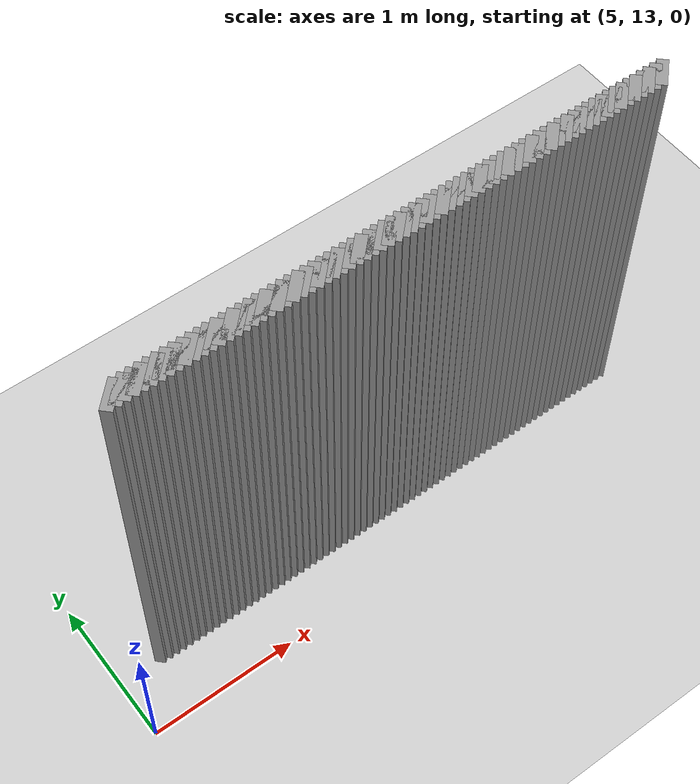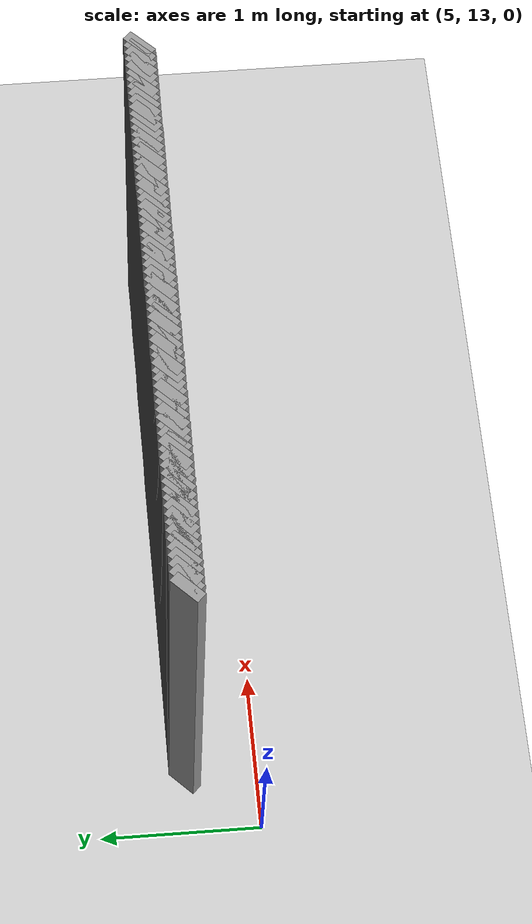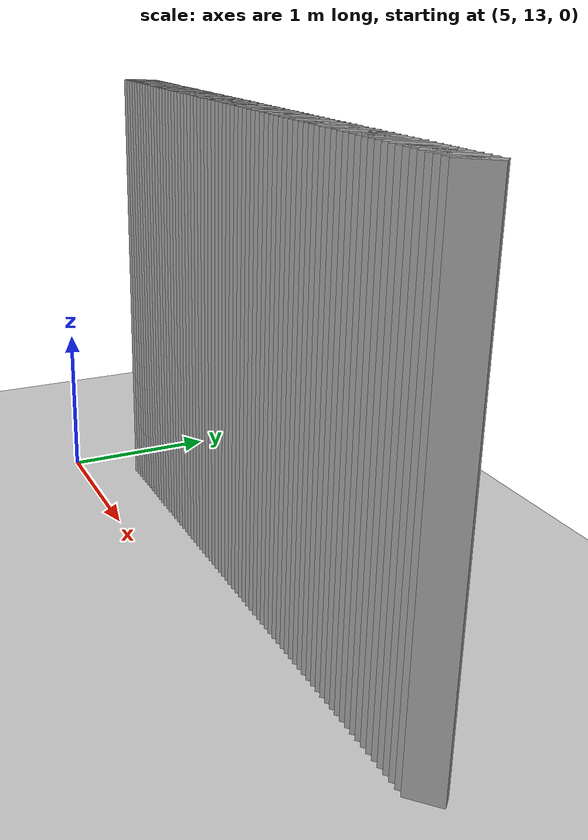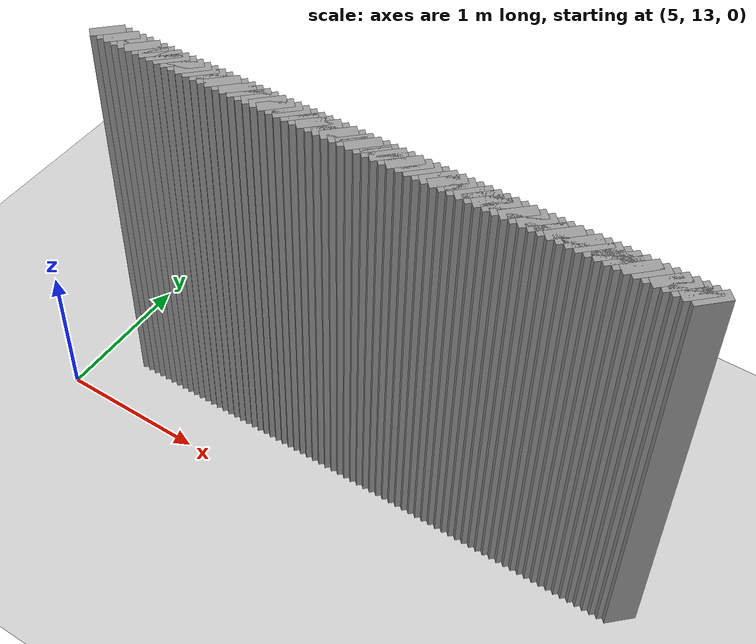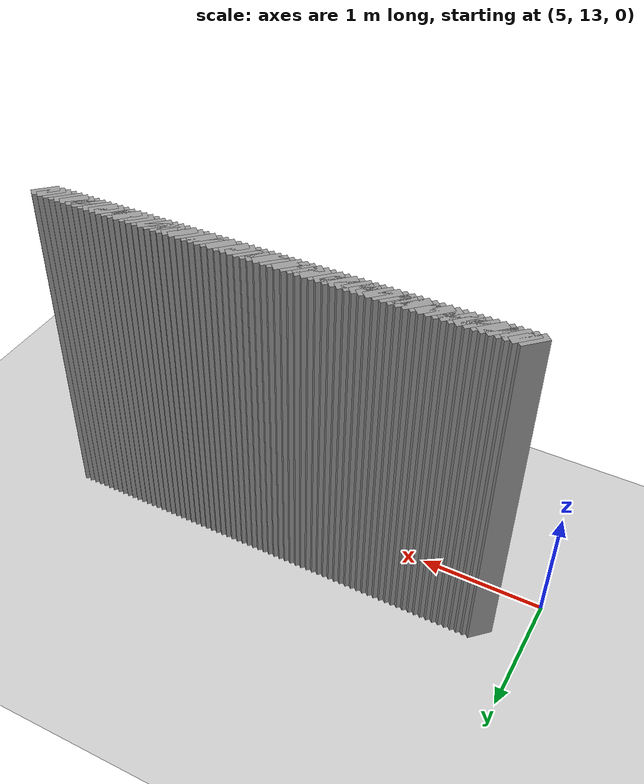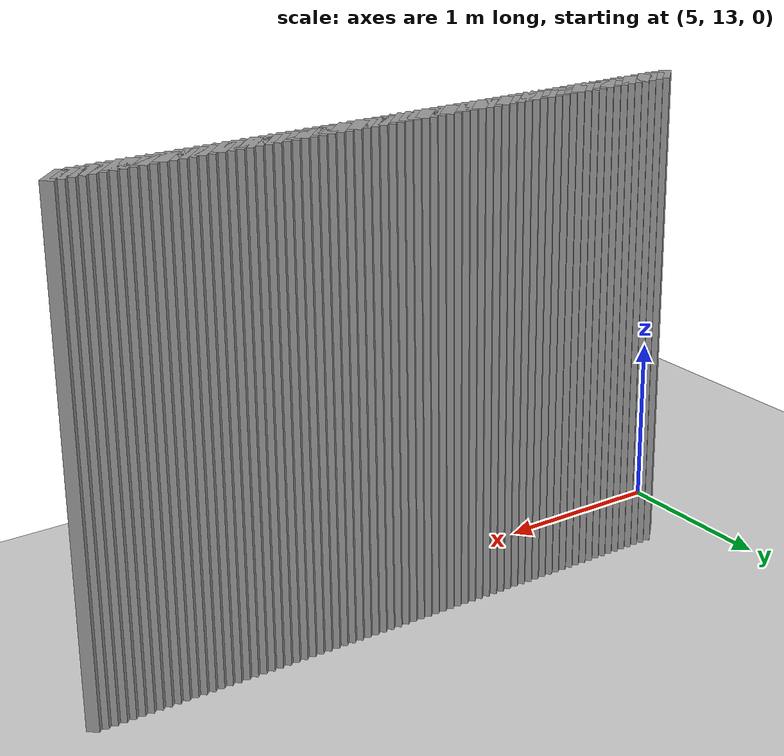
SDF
<sdf version="1.5">
 <world name="default">
  <include><uri>model://ground_plane</uri></include>
  <include><uri>model://sun</uri></include>
  <model name="grey_wall_1110">
   <static>1</static>
   <link name="link">
    <pose>5.3500000000000005 13.450000000000001  1.4 0 0 -0.7853981633974483</pose>
    <collision name="collision">
     <geometry><box><size>0.07071067811865576 .2  2.8</size></box></geometry>
    </collision>
    <visual name="visual">
     <cast_shadows>0</cast_shadows>
     <geometry><box><size>0.07071067811865576 .2  2.8</size></box></geometry>
     <material>
      <script>
       <uri>model://grey_wall/materials/scripts</uri>
       <uri>model://grey_wall/materials/textures</uri>
       <name>vrc/grey_wall</name>
      </script>
     </material>
    </visual>
   </link>
  </model>
  <model name="grey_wall_1111">
   <static>1</static>
   <link name="link">
    <pose>5.4 13.450000000000001  1.4 0 0 -0.7853981633974483</pose>
    <collision name="collision">
     <geometry><box><size>0.07071067811865576 .2  2.8</size></box></geometry>
    </collision>
    <visual name="visual">
     <cast_shadows>0</cast_shadows>
     <geometry><box><size>0.07071067811865576 .2  2.8</size></box></geometry>
     <material>
      <script>
       <uri>model://grey_wall/materials/scripts</uri>
       <uri>model://grey_wall/materials/textures</uri>
       <name>vrc/grey_wall</name>
      </script>
     </material>
    </visual>
   </link>
  </model>
  <model name="grey_wall_1112">
   <static>1</static>
   <link name="link">
    <pose>5.45 13.450000000000001  1.4 0 0 -0.7853981633974483</pose>
    <collision name="collision">
     <geometry><box><size>0.07071067811865576 .2  2.8</size></box></geometry>
    </collision>
    <visual name="visual">
     <cast_shadows>0</cast_shadows>
     <geometry><box><size>0.07071067811865576 .2  2.8</size></box></geometry>
     <material>
      <script>
       <uri>model://grey_wall/materials/scripts</uri>
       <uri>model://grey_wall/materials/textures</uri>
       <name>vrc/grey_wall</name>
      </script>
     </material>
    </visual>
   </link>
  </model>
  <model name="grey_wall_1113">
   <static>1</static>
   <link name="link">
    <pose>5.5 13.450000000000001  1.4 0 0 -0.7853981633974483</pose>
    <collision name="collision">
     <geometry><box><size>0.07071067811865576 .2  2.8</size></box></geometry>
    </collision>
    <visual name="visual">
     <cast_shadows>0</cast_shadows>
     <geometry><box><size>0.07071067811865576 .2  2.8</size></box></geometry>
     <material>
      <script>
       <uri>model://grey_wall/materials/scripts</uri>
       <uri>model://grey_wall/materials/textures</uri>
       <name>vrc/grey_wall</name>
      </script>
     </material>
    </visual>
   </link>
  </model>
  <model name="grey_wall_1114">
   <static>1</static>
   <link name="link">
    <pose>5.550000000000001 13.450000000000001  1.4 0 0 -0.7853981633974483</pose>
    <collision name="collision">
     <geometry><box><size>0.07071067811865576 .2  2.8</size></box></geometry>
    </collision>
    <visual name="visual">
     <cast_shadows>0</cast_shadows>
     <geometry><box><size>0.07071067811865576 .2  2.8</size></box></geometry>
     <material>
      <script>
       <uri>model://grey_wall/materials/scripts</uri>
       <uri>model://grey_wall/materials/textures</uri>
       <name>vrc/grey_wall</name>
      </script>
     </material>
    </visual>
   </link>
  </model>
  <model name="grey_wall_1115">
   <static>1</static>
   <link name="link">
    <pose>5.6000000000000005 13.450000000000001  1.4 0 0 -0.7853981633974483</pose>
    <collision name="collision">
     <geometry><box><size>0.07071067811865576 .2  2.8</size></box></geometry>
    </collision>
    <visual name="visual">
     <cast_shadows>0</cast_shadows>
     <geometry><box><size>0.07071067811865576 .2  2.8</size></box></geometry>
     <material>
      <script>
       <uri>model://grey_wall/materials/scripts</uri>
       <uri>model://grey_wall/materials/textures</uri>
       <name>vrc/grey_wall</name>
      </script>
     </material>
    </visual>
   </link>
  </model>
  <model name="grey_wall_1116">
   <static>1</static>
   <link name="link">
    <pose>5.65 13.450000000000001  1.4 0 0 -0.7853981633974483</pose>
    <collision name="collision">
     <geometry><box><size>0.07071067811865576 .2  2.8</size></box></geometry>
    </collision>
    <visual name="visual">
     <cast_shadows>0</cast_shadows>
     <geometry><box><size>0.07071067811865576 .2  2.8</size></box></geometry>
     <material>
      <script>
       <uri>model://grey_wall/materials/scripts</uri>
       <uri>model://grey_wall/materials/textures</uri>
       <name>vrc/grey_wall</name>
      </script>
     </material>
    </visual>
   </link>
  </model>
  <model name="grey_wall_1117">
   <static>1</static>
   <link name="link">
    <pose>5.7 13.450000000000001  1.4 0 0 -0.7853981633974483</pose>
    <collision name="collision">
     <geometry><box><size>0.07071067811865576 .2  2.8</size></box></geometry>
    </collision>
    <visual name="visual">
     <cast_shadows>0</cast_shadows>
     <geometry><box><size>0.07071067811865576 .2  2.8</size></box></geometry>
     <material>
      <script>
       <uri>model://grey_wall/materials/scripts</uri>
       <uri>model://grey_wall/materials/textures</uri>
       <name>vrc/grey_wall</name>
      </script>
     </material>
    </visual>
   </link>
  </model>
  <model name="grey_wall_1118">
   <static>1</static>
   <link name="link">
    <pose>5.75 13.450000000000001  1.4 0 0 -0.7853981633974483</pose>
    <collision name="collision">
     <geometry><box><size>0.07071067811865576 .2  2.8</size></box></geometry>
    </collision>
    <visual name="visual">
     <cast_shadows>0</cast_shadows>
     <geometry><box><size>0.07071067811865576 .2  2.8</size></box></geometry>
     <material>
      <script>
       <uri>model://grey_wall/materials/scripts</uri>
       <uri>model://grey_wall/materials/textures</uri>
       <name>vrc/grey_wall</name>
      </script>
     </material>
    </visual>
   </link>
  </model>
  <model name="grey_wall_1119">
   <static>1</static>
   <link name="link">
    <pose>5.800000000000001 13.450000000000001  1.4 0 0 -0.7853981633974483</pose>
    <collision name="collision">
     <geometry><box><size>0.07071067811865576 .2  2.8</size></box></geometry>
    </collision>
    <visual name="visual">
     <cast_shadows>0</cast_shadows>
     <geometry><box><size>0.07071067811865576 .2  2.8</size></box></geometry>
     <material>
      <script>
       <uri>model://grey_wall/materials/scripts</uri>
       <uri>model://grey_wall/materials/textures</uri>
       <name>vrc/grey_wall</name>
      </script>
     </material>
    </visual>
   </link>
  </model>
  <model name="grey_wall_1120">
   <static>1</static>
   <link name="link">
    <pose>5.8500000000000005 13.450000000000001  1.4 0 0 -0.7853981633974483</pose>
    <collision name="collision">
     <geometry><box><size>0.07071067811865576 .2  2.8</size></box></geometry>
    </collision>
    <visual name="visual">
     <cast_shadows>0</cast_shadows>
     <geometry><box><size>0.07071067811865576 .2  2.8</size></box></geometry>
     <material>
      <script>
       <uri>model://grey_wall/materials/scripts</uri>
       <uri>model://grey_wall/materials/textures</uri>
       <name>vrc/grey_wall</name>
      </script>
     </material>
    </visual>
   </link>
  </model>
  <model name="grey_wall_1121">
   <static>1</static>
   <link name="link">
    <pose>5.9 13.450000000000001  1.4 0 0 -0.7853981633974483</pose>
    <collision name="collision">
     <geometry><box><size>0.07071067811865576 .2  2.8</size></box></geometry>
    </collision>
    <visual name="visual">
     <cast_shadows>0</cast_shadows>
     <geometry><box><size>0.07071067811865576 .2  2.8</size></box></geometry>
     <material>
      <script>
       <uri>model://grey_wall/materials/scripts</uri>
       <uri>model://grey_wall/materials/textures</uri>
       <name>vrc/grey_wall</name>
      </script>
     </material>
    </visual>
   </link>
  </model>
  <model name="grey_wall_1122">
   <static>1</static>
   <link name="link">
    <pose>5.95 13.450000000000001  1.4 0 0 -0.7853981633974483</pose>
    <collision name="collision">
     <geometry><box><size>0.07071067811865576 .2  2.8</size></box></geometry>
    </collision>
    <visual name="visual">
     <cast_shadows>0</cast_shadows>
     <geometry><box><size>0.07071067811865576 .2  2.8</size></box></geometry>
     <material>
      <script>
       <uri>model://grey_wall/materials/scripts</uri>
       <uri>model://grey_wall/materials/textures</uri>
       <name>vrc/grey_wall</name>
      </script>
     </material>
    </visual>
   </link>
  </model>
  <model name="grey_wall_1123">
   <static>1</static>
   <link name="link">
    <pose>6.0 13.450000000000001  1.4 0 0 -0.7853981633974483</pose>
    <collision name="collision">
     <geometry><box><size>0.07071067811865576 .2  2.8</size></box></geometry>
    </collision>
    <visual name="visual">
     <cast_shadows>0</cast_shadows>
     <geometry><box><size>0.07071067811865576 .2  2.8</size></box></geometry>
     <material>
      <script>
       <uri>model://grey_wall/materials/scripts</uri>
       <uri>model://grey_wall/materials/textures</uri>
       <name>vrc/grey_wall</name>
      </script>
     </material>
    </visual>
   </link>
  </model>
  <model name="grey_wall_1124">
   <static>1</static>
   <link name="link">
    <pose>6.050000000000001 13.450000000000001  1.4 0 0 -0.7853981633974483</pose>
    <collision name="collision">
     <geometry><box><size>0.07071067811865576 .2  2.8</size></box></geometry>
    </collision>
    <visual name="visual">
     <cast_shadows>0</cast_shadows>
     <geometry><box><size>0.07071067811865576 .2  2.8</size></box></geometry>
     <material>
      <script>
       <uri>model://grey_wall/materials/scripts</uri>
       <uri>model://grey_wall/materials/textures</uri>
       <name>vrc/grey_wall</name>
      </script>
     </material>
    </visual>
   </link>
  </model>
  <model name="grey_wall_1125">
   <static>1</static>
   <link name="link">
    <pose>6.1000000000000005 13.450000000000001  1.4 0 0 -0.7853981633974483</pose>
    <collision name="collision">
     <geometry><box><size>0.07071067811865576 .2  2.8</size></box></geometry>
    </collision>
    <visual name="visual">
     <cast_shadows>0</cast_shadows>
     <geometry><box><size>0.07071067811865576 .2  2.8</size></box></geometry>
     <material>
      <script>
       <uri>model://grey_wall/materials/scripts</uri>
       <uri>model://grey_wall/materials/textures</uri>
       <name>vrc/grey_wall</name>
      </script>
     </material>
    </visual>
   </link>
  </model>
  <model name="grey_wall_1126">
   <static>1</static>
   <link name="link">
    <pose>6.15 13.450000000000001  1.4 0 0 -0.7853981633974483</pose>
    <collision name="collision">
     <geometry><box><size>0.07071067811865576 .2  2.8</size></box></geometry>
    </collision>
    <visual name="visual">
     <cast_shadows>0</cast_shadows>
     <geometry><box><size>0.07071067811865576 .2  2.8</size></box></geometry>
     <material>
      <script>
       <uri>model://grey_wall/materials/scripts</uri>
       <uri>model://grey_wall/materials/textures</uri>
       <name>vrc/grey_wall</name>
      </script>
     </material>
    </visual>
   </link>
  </model>
  <model name="grey_wall_1127">
   <static>1</static>
   <link name="link">
    <pose>6.2 13.450000000000001  1.4 0 0 -0.7853981633974483</pose>
    <collision name="collision">
     <geometry><box><size>0.07071067811865576 .2  2.8</size></box></geometry>
    </collision>
    <visual name="visual">
     <cast_shadows>0</cast_shadows>
     <geometry><box><size>0.07071067811865576 .2  2.8</size></box></geometry>
     <material>
      <script>
       <uri>model://grey_wall/materials/scripts</uri>
       <uri>model://grey_wall/materials/textures</uri>
       <name>vrc/grey_wall</name>
      </script>
     </material>
    </visual>
   </link>
  </model>
  <model name="grey_wall_1128">
   <static>1</static>
   <link name="link">
    <pose>6.25 13.450000000000001  1.4 0 0 -0.7853981633974483</pose>
    <collision name="collision">
     <geometry><box><size>0.07071067811865576 .2  2.8</size></box></geometry>
    </collision>
    <visual name="visual">
     <cast_shadows>0</cast_shadows>
     <geometry><box><size>0.07071067811865576 .2  2.8</size></box></geometry>
     <material>
      <script>
       <uri>model://grey_wall/materials/scripts</uri>
       <uri>model://grey_wall/materials/textures</uri>
       <name>vrc/grey_wall</name>
      </script>
     </material>
    </visual>
   </link>
  </model>
  <model name="grey_wall_1129">
   <static>1</static>
   <link name="link">
    <pose>6.300000000000001 13.450000000000001  1.4 0 0 -0.7853981633974483</pose>
    <collision name="collision">
     <geometry><box><size>0.07071067811865576 .2  2.8</size></box></geometry>
    </collision>
    <visual name="visual">
     <cast_shadows>0</cast_shadows>
     <geometry><box><size>0.07071067811865576 .2  2.8</size></box></geometry>
     <material>
      <script>
       <uri>model://grey_wall/materials/scripts</uri>
       <uri>model://grey_wall/materials/textures</uri>
       <name>vrc/grey_wall</name>
      </script>
     </material>
    </visual>
   </link>
  </model>
  <model name="grey_wall_1130">
   <static>1</static>
   <link name="link">
    <pose>6.3500000000000005 13.450000000000001  1.4 0 0 -0.7853981633974483</pose>
    <collision name="collision">
     <geometry><box><size>0.07071067811865576 .2  2.8</size></box></geometry>
    </collision>
    <visual name="visual">
     <cast_shadows>0</cast_shadows>
     <geometry><box><size>0.07071067811865576 .2  2.8</size></box></geometry>
     <material>
      <script>
       <uri>model://grey_wall/materials/scripts</uri>
       <uri>model://grey_wall/materials/textures</uri>
       <name>vrc/grey_wall</name>
      </script>
     </material>
    </visual>
   </link>
  </model>
  <model name="grey_wall_1131">
   <static>1</static>
   <link name="link">
    <pose>6.4 13.450000000000001  1.4 0 0 -0.7853981633974483</pose>
    <collision name="collision">
     <geometry><box><size>0.07071067811865576 .2  2.8</size></box></geometry>
    </collision>
    <visual name="visual">
     <cast_shadows>0</cast_shadows>
     <geometry><box><size>0.07071067811865576 .2  2.8</size></box></geometry>
     <material>
      <script>
       <uri>model://grey_wall/materials/scripts</uri>
       <uri>model://grey_wall/materials/textures</uri>
       <name>vrc/grey_wall</name>
      </script>
     </material>
    </visual>
   </link>
  </model>
  <model name="grey_wall_1132">
   <static>1</static>
   <link name="link">
    <pose>6.45 13.450000000000001  1.4 0 0 -0.7853981633974483</pose>
    <collision name="collision">
     <geometry><box><size>0.07071067811865576 .2  2.8</size></box></geometry>
    </collision>
    <visual name="visual">
     <cast_shadows>0</cast_shadows>
     <geometry><box><size>0.07071067811865576 .2  2.8</size></box></geometry>
     <material>
      <script>
       <uri>model://grey_wall/materials/scripts</uri>
       <uri>model://grey_wall/materials/textures</uri>
       <name>vrc/grey_wall</name>
      </script>
     </material>
    </visual>
   </link>
  </model>
  <model name="grey_wall_1133">
   <static>1</static>
   <link name="link">
    <pose>6.5 13.450000000000001  1.4 0 0 -0.7853981633974483</pose>
    <collision name="collision">
     <geometry><box><size>0.07071067811865576 .2  2.8</size></box></geometry>
    </collision>
    <visual name="visual">
     <cast_shadows>0</cast_shadows>
     <geometry><box><size>0.07071067811865576 .2  2.8</size></box></geometry>
     <material>
      <script>
       <uri>model://grey_wall/materials/scripts</uri>
       <uri>model://grey_wall/materials/textures</uri>
       <name>vrc/grey_wall</name>
      </script>
     </material>
    </visual>
   </link>
  </model>
  <model name="grey_wall_1134">
   <static>1</static>
   <link name="link">
    <pose>6.550000000000001 13.450000000000001  1.4 0 0 -0.7853981633974483</pose>
    <collision name="collision">
     <geometry><box><size>0.07071067811865576 .2  2.8</size></box></geometry>
    </collision>
    <visual name="visual">
     <cast_shadows>0</cast_shadows>
     <geometry><box><size>0.07071067811865576 .2  2.8</size></box></geometry>
     <material>
      <script>
       <uri>model://grey_wall/materials/scripts</uri>
       <uri>model://grey_wall/materials/textures</uri>
       <name>vrc/grey_wall</name>
      </script>
     </material>
    </visual>
   </link>
  </model>
  <model name="grey_wall_1135">
   <static>1</static>
   <link name="link">
    <pose>6.6000000000000005 13.450000000000001  1.4 0 0 -0.7853981633974483</pose>
    <collision name="collision">
     <geometry><box><size>0.07071067811865576 .2  2.8</size></box></geometry>
    </collision>
    <visual name="visual">
     <cast_shadows>0</cast_shadows>
     <geometry><box><size>0.07071067811865576 .2  2.8</size></box></geometry>
     <material>
      <script>
       <uri>model://grey_wall/materials/scripts</uri>
       <uri>model://grey_wall/materials/textures</uri>
       <name>vrc/grey_wall</name>
      </script>
     </material>
    </visual>
   </link>
  </model>
  <model name="grey_wall_1136">
   <static>1</static>
   <link name="link">
    <pose>6.65 13.450000000000001  1.4 0 0 -0.7853981633974483</pose>
    <collision name="collision">
     <geometry><box><size>0.07071067811865576 .2  2.8</size></box></geometry>
    </collision>
    <visual name="visual">
     <cast_shadows>0</cast_shadows>
     <geometry><box><size>0.07071067811865576 .2  2.8</size></box></geometry>
     <material>
      <script>
       <uri>model://grey_wall/materials/scripts</uri>
       <uri>model://grey_wall/materials/textures</uri>
       <name>vrc/grey_wall</name>
      </script>
     </material>
    </visual>
   </link>
  </model>
  <model name="grey_wall_1137">
   <static>1</static>
   <link name="link">
    <pose>6.7 13.450000000000001  1.4 0 0 -0.7853981633974483</pose>
    <collision name="collision">
     <geometry><box><size>0.07071067811865576 .2  2.8</size></box></geometry>
    </collision>
    <visual name="visual">
     <cast_shadows>0</cast_shadows>
     <geometry><box><size>0.07071067811865576 .2  2.8</size></box></geometry>
     <material>
      <script>
       <uri>model://grey_wall/materials/scripts</uri>
       <uri>model://grey_wall/materials/textures</uri>
       <name>vrc/grey_wall</name>
      </script>
     </material>
    </visual>
   </link>
  </model>
  <model name="grey_wall_1138">
   <static>1</static>
   <link name="link">
    <pose>6.75 13.450000000000001  1.4 0 0 -0.7853981633974483</pose>
    <collision name="collision">
     <geometry><box><size>0.07071067811865576 .2  2.8</size></box></geometry>
    </collision>
    <visual name="visual">
     <cast_shadows>0</cast_shadows>
     <geometry><box><size>0.07071067811865576 .2  2.8</size></box></geometry>
     <material>
      <script>
       <uri>model://grey_wall/materials/scripts</uri>
       <uri>model://grey_wall/materials/textures</uri>
       <name>vrc/grey_wall</name>
      </script>
     </material>
    </visual>
   </link>
  </model>
  <model name="grey_wall_1139">
   <static>1</static>
   <link name="link">
    <pose>6.800000000000001 13.450000000000001  1.4 0 0 -0.7853981633974483</pose>
    <collision name="collision">
     <geometry><box><size>0.07071067811865576 .2  2.8</size></box></geometry>
    </collision>
    <visual name="visual">
     <cast_shadows>0</cast_shadows>
     <geometry><box><size>0.07071067811865576 .2  2.8</size></box></geometry>
     <material>
      <script>
       <uri>model://grey_wall/materials/scripts</uri>
       <uri>model://grey_wall/materials/textures</uri>
       <name>vrc/grey_wall</name>
      </script>
     </material>
    </visual>
   </link>
  </model>
  <model name="grey_wall_1140">
   <static>1</static>
   <link name="link">
    <pose>6.8500000000000005 13.450000000000001  1.4 0 0 -0.7853981633974483</pose>
    <collision name="collision">
     <geometry><box><size>0.07071067811865576 .2  2.8</size></box></geometry>
    </collision>
    <visual name="visual">
     <cast_shadows>0</cast_shadows>
     <geometry><box><size>0.07071067811865576 .2  2.8</size></box></geometry>
     <material>
      <script>
       <uri>model://grey_wall/materials/scripts</uri>
       <uri>model://grey_wall/materials/textures</uri>
       <name>vrc/grey_wall</name>
      </script>
     </material>
    </visual>
   </link>
  </model>
  <model name="grey_wall_1141">
   <static>1</static>
   <link name="link">
    <pose>6.9 13.450000000000001  1.4 0 0 -0.7853981633974483</pose>
    <collision name="collision">
     <geometry><box><size>0.07071067811865576 .2  2.8</size></box></geometry>
    </collision>
    <visual name="visual">
     <cast_shadows>0</cast_shadows>
     <geometry><box><size>0.07071067811865576 .2  2.8</size></box></geometry>
     <material>
      <script>
       <uri>model://grey_wall/materials/scripts</uri>
       <uri>model://grey_wall/materials/textures</uri>
       <name>vrc/grey_wall</name>
      </script>
     </material>
    </visual>
   </link>
  </model>
  <model name="grey_wall_1142">
   <static>1</static>
   <link name="link">
    <pose>6.95 13.450000000000001  1.4 0 0 -0.7853981633974483</pose>
    <collision name="collision">
     <geometry><box><size>0.07071067811865576 .2  2.8</size></box></geometry>
    </collision>
    <visual name="visual">
     <cast_shadows>0</cast_shadows>
     <geometry><box><size>0.07071067811865576 .2  2.8</size></box></geometry>
     <material>
      <script>
       <uri>model://grey_wall/materials/scripts</uri>
       <uri>model://grey_wall/materials/textures</uri>
       <name>vrc/grey_wall</name>
      </script>
     </material>
    </visual>
   </link>
  </model>
  <model name="grey_wall_1143">
   <static>1</static>
   <link name="link">
    <pose>7.0 13.450000000000001  1.4 0 0 -0.7853981633974483</pose>
    <collision name="collision">
     <geometry><box><size>0.07071067811865576 .2  2.8</size></box></geometry>
    </collision>
    <visual name="visual">
     <cast_shadows>0</cast_shadows>
     <geometry><box><size>0.07071067811865576 .2  2.8</size></box></geometry>
     <material>
      <script>
       <uri>model://grey_wall/materials/scripts</uri>
       <uri>model://grey_wall/materials/textures</uri>
       <name>vrc/grey_wall</name>
      </script>
     </material>
    </visual>
   </link>
  </model>
  <model name="grey_wall_1144">
   <static>1</static>
   <link name="link">
    <pose>7.050000000000001 13.450000000000001  1.4 0 0 -0.7853981633974483</pose>
    <collision name="collision">
     <geometry><box><size>0.07071067811865576 .2  2.8</size></box></geometry>
    </collision>
    <visual name="visual">
     <cast_shadows>0</cast_shadows>
     <geometry><box><size>0.07071067811865576 .2  2.8</size></box></geometry>
     <material>
      <script>
       <uri>model://grey_wall/materials/scripts</uri>
       <uri>model://grey_wall/materials/textures</uri>
       <name>vrc/grey_wall</name>
      </script>
     </material>
    </visual>
   </link>
  </model>
  <model name="grey_wall_1145">
   <static>1</static>
   <link name="link">
    <pose>7.1000000000000005 13.450000000000001  1.4 0 0 -0.7853981633974483</pose>
    <collision name="collision">
     <geometry><box><size>0.07071067811865576 .2  2.8</size></box></geometry>
    </collision>
    <visual name="visual">
     <cast_shadows>0</cast_shadows>
     <geometry><box><size>0.07071067811865576 .2  2.8</size></box></geometry>
     <material>
      <script>
       <uri>model://grey_wall/materials/scripts</uri>
       <uri>model://grey_wall/materials/textures</uri>
       <name>vrc/grey_wall</name>
      </script>
     </material>
    </visual>
   </link>
  </model>
  <model name="grey_wall_1146">
   <static>1</static>
   <link name="link">
    <pose>7.15 13.450000000000001  1.4 0 0 -0.7853981633974483</pose>
    <collision name="collision">
     <geometry><box><size>0.07071067811865576 .2  2.8</size></box></geometry>
    </collision>
    <visual name="visual">
     <cast_shadows>0</cast_shadows>
     <geometry><box><size>0.07071067811865576 .2  2.8</size></box></geometry>
     <material>
      <script>
       <uri>model://grey_wall/materials/scripts</uri>
       <uri>model://grey_wall/materials/textures</uri>
       <name>vrc/grey_wall</name>
      </script>
     </material>
    </visual>
   </link>
  </model>
  <model name="grey_wall_1147">
   <static>1</static>
   <link name="link">
    <pose>7.2 13.450000000000001  1.4 0 0 -0.7853981633974483</pose>
    <collision name="collision">
     <geometry><box><size>0.07071067811865576 .2  2.8</size></box></geometry>
    </collision>
    <visual name="visual">
     <cast_shadows>0</cast_shadows>
     <geometry><box><size>0.07071067811865576 .2  2.8</size></box></geometry>
     <material>
      <script>
       <uri>model://grey_wall/materials/scripts</uri>
       <uri>model://grey_wall/materials/textures</uri>
       <name>vrc/grey_wall</name>
      </script>
     </material>
    </visual>
   </link>
  </model>
  <model name="grey_wall_1148">
   <static>1</static>
   <link name="link">
    <pose>7.25 13.450000000000001  1.4 0 0 -0.7853981633974483</pose>
    <collision name="collision">
     <geometry><box><size>0.07071067811865576 .2  2.8</size></box></geometry>
    </collision>
    <visual name="visual">
     <cast_shadows>0</cast_shadows>
     <geometry><box><size>0.07071067811865576 .2  2.8</size></box></geometry>
     <material>
      <script>
       <uri>model://grey_wall/materials/scripts</uri>
       <uri>model://grey_wall/materials/textures</uri>
       <name>vrc/grey_wall</name>
      </script>
     </material>
    </visual>
   </link>
  </model>
  <model name="grey_wall_1149">
   <static>1</static>
   <link name="link">
    <pose>7.300000000000001 13.450000000000001  1.4 0 0 -0.7853981633974483</pose>
    <collision name="collision">
     <geometry><box><size>0.07071067811865576 .2  2.8</size></box></geometry>
    </collision>
    <visual name="visual">
     <cast_shadows>0</cast_shadows>
     <geometry><box><size>0.07071067811865576 .2  2.8</size></box></geometry>
     <material>
      <script>
       <uri>model://grey_wall/materials/scripts</uri>
       <uri>model://grey_wall/materials/textures</uri>
       <name>vrc/grey_wall</name>
      </script>
     </material>
    </visual>
   </link>
  </model>
  <model name="grey_wall_1150">
   <static>1</static>
   <link name="link">
    <pose>7.3500000000000005 13.450000000000001  1.4 0 0 -0.7853981633974483</pose>
    <collision name="collision">
     <geometry><box><size>0.07071067811865576 .2  2.8</size></box></geometry>
    </collision>
    <visual name="visual">
     <cast_shadows>0</cast_shadows>
     <geometry><box><size>0.07071067811865576 .2  2.8</size></box></geometry>
     <material>
      <script>
       <uri>model://grey_wall/materials/scripts</uri>
       <uri>model://grey_wall/materials/textures</uri>
       <name>vrc/grey_wall</name>
      </script>
     </material>
    </visual>
   </link>
  </model>
  <model name="grey_wall_1151">
   <static>1</static>
   <link name="link">
    <pose>7.4 13.450000000000001  1.4 0 0 -0.7853981633974483</pose>
    <collision name="collision">
     <geometry><box><size>0.07071067811865576 .2  2.8</size></box></geometry>
    </collision>
    <visual name="visual">
     <cast_shadows>0</cast_shadows>
     <geometry><box><size>0.07071067811865576 .2  2.8</size></box></geometry>
     <material>
      <script>
       <uri>model://grey_wall/materials/scripts</uri>
       <uri>model://grey_wall/materials/textures</uri>
       <name>vrc/grey_wall</name>
      </script>
     </material>
    </visual>
   </link>
  </model>
  <model name="grey_wall_1152">
   <static>1</static>
   <link name="link">
    <pose>7.45 13.450000000000001  1.4 0 0 -0.7853981633974483</pose>
    <collision name="collision">
     <geometry><box><size>0.07071067811865576 .2  2.8</size></box></geometry>
    </collision>
    <visual name="visual">
     <cast_shadows>0</cast_shadows>
     <geometry><box><size>0.07071067811865576 .2  2.8</size></box></geometry>
     <material>
      <script>
       <uri>model://grey_wall/materials/scripts</uri>
       <uri>model://grey_wall/materials/textures</uri>
       <name>vrc/grey_wall</name>
      </script>
     </material>
    </visual>
   </link>
  </model>
  <model name="grey_wall_1153">
   <static>1</static>
   <link name="link">
    <pose>7.5 13.450000000000001  1.4 0 0 -0.7853981633974483</pose>
    <collision name="collision">
     <geometry><box><size>0.07071067811865576 .2  2.8</size></box></geometry>
    </collision>
    <visual name="visual">
     <cast_shadows>0</cast_shadows>
     <geometry><box><size>0.07071067811865576 .2  2.8</size></box></geometry>
     <material>
      <script>
       <uri>model://grey_wall/materials/scripts</uri>
       <uri>model://grey_wall/materials/textures</uri>
       <name>vrc/grey_wall</name>
      </script>
     </material>
    </visual>
   </link>
  </model>
  <model name="grey_wall_1154">
   <static>1</static>
   <link name="link">
    <pose>7.550000000000001 13.450000000000001  1.4 0 0 -0.7853981633974483</pose>
    <collision name="collision">
     <geometry><box><size>0.07071067811865576 .2  2.8</size></box></geometry>
    </collision>
    <visual name="visual">
     <cast_shadows>0</cast_shadows>
     <geometry><box><size>0.07071067811865576 .2  2.8</size></box></geometry>
     <material>
      <script>
       <uri>model://grey_wall/materials/scripts</uri>
       <uri>model://grey_wall/materials/textures</uri>
       <name>vrc/grey_wall</name>
      </script>
     </material>
    </visual>
   </link>
  </model>
  <model name="grey_wall_1155">
   <static>1</static>
   <link name="link">
    <pose>7.6000000000000005 13.450000000000001  1.4 0 0 -0.7853981633974483</pose>
    <collision name="collision">
     <geometry><box><size>0.07071067811865576 .2  2.8</size></box></geometry>
    </collision>
    <visual name="visual">
     <cast_shadows>0</cast_shadows>
     <geometry><box><size>0.07071067811865576 .2  2.8</size></box></geometry>
     <material>
      <script>
       <uri>model://grey_wall/materials/scripts</uri>
       <uri>model://grey_wall/materials/textures</uri>
       <name>vrc/grey_wall</name>
      </script>
     </material>
    </visual>
   </link>
  </model>
  <model name="grey_wall_1156">
   <static>1</static>
   <link name="link">
    <pose>7.65 13.450000000000001  1.4 0 0 -0.7853981633974483</pose>
    <collision name="collision">
     <geometry><box><size>0.07071067811865576 .2  2.8</size></box></geometry>
    </collision>
    <visual name="visual">
     <cast_shadows>0</cast_shadows>
     <geometry><box><size>0.07071067811865576 .2  2.8</size></box></geometry>
     <material>
      <script>
       <uri>model://grey_wall/materials/scripts</uri>
       <uri>model://grey_wall/materials/textures</uri>
       <name>vrc/grey_wall</name>
      </script>
     </material>
    </visual>
   </link>
  </model>
  <model name="grey_wall_1157">
   <static>1</static>
   <link name="link">
    <pose>7.7 13.450000000000001  1.4 0 0 -0.7853981633974483</pose>
    <collision name="collision">
     <geometry><box><size>0.07071067811865576 .2  2.8</size></box></geometry>
    </collision>
    <visual name="visual">
     <cast_shadows>0</cast_shadows>
     <geometry><box><size>0.07071067811865576 .2  2.8</size></box></geometry>
     <material>
      <script>
       <uri>model://grey_wall/materials/scripts</uri>
       <uri>model://grey_wall/materials/textures</uri>
       <name>vrc/grey_wall</name>
      </script>
     </material>
    </visual>
   </link>
  </model>
  <model name="grey_wall_1158">
   <static>1</static>
   <link name="link">
    <pose>7.75 13.450000000000001  1.4 0 0 -0.7853981633974483</pose>
    <collision name="collision">
     <geometry><box><size>0.07071067811865576 .2  2.8</size></box></geometry>
    </collision>
    <visual name="visual">
     <cast_shadows>0</cast_shadows>
     <geometry><box><size>0.07071067811865576 .2  2.8</size></box></geometry>
     <material>
      <script>
       <uri>model://grey_wall/materials/scripts</uri>
       <uri>model://grey_wall/materials/textures</uri>
       <name>vrc/grey_wall</name>
      </script>
     </material>
    </visual>
   </link>
  </model>
  <model name="grey_wall_1159">
   <static>1</static>
   <link name="link">
    <pose>7.800000000000001 13.450000000000001  1.4 0 0 -0.7853981633974483</pose>
    <collision name="collision">
     <geometry><box><size>0.07071067811865576 .2  2.8</size></box></geometry>
    </collision>
    <visual name="visual">
     <cast_shadows>0</cast_shadows>
     <geometry><box><size>0.07071067811865576 .2  2.8</size></box></geometry>
     <material>
      <script>
       <uri>model://grey_wall/materials/scripts</uri>
       <uri>model://grey_wall/materials/textures</uri>
       <name>vrc/grey_wall</name>
      </script>
     </material>
    </visual>
   </link>
  </model>
  <model name="grey_wall_1160">
   <static>1</static>
   <link name="link">
    <pose>7.8500000000000005 13.450000000000001  1.4 0 0 -0.7853981633974483</pose>
    <collision name="collision">
     <geometry><box><size>0.07071067811865576 .2  2.8</size></box></geometry>
    </collision>
    <visual name="visual">
     <cast_shadows>0</cast_shadows>
     <geometry><box><size>0.07071067811865576 .2  2.8</size></box></geometry>
     <material>
      <script>
       <uri>model://grey_wall/materials/scripts</uri>
       <uri>model://grey_wall/materials/textures</uri>
       <name>vrc/grey_wall</name>
      </script>
     </material>
    </visual>
   </link>
  </model>
  <model name="grey_wall_1161">
   <static>1</static>
   <link name="link">
    <pose>7.9 13.450000000000001  1.4 0 0 -0.7853981633974483</pose>
    <collision name="collision">
     <geometry><box><size>0.07071067811865576 .2  2.8</size></box></geometry>
    </collision>
    <visual name="visual">
     <cast_shadows>0</cast_shadows>
     <geometry><box><size>0.07071067811865576 .2  2.8</size></box></geometry>
     <material>
      <script>
       <uri>model://grey_wall/materials/scripts</uri>
       <uri>model://grey_wall/materials/textures</uri>
       <name>vrc/grey_wall</name>
      </script>
     </material>
    </visual>
   </link>
  </model>
  <model name="grey_wall_1162">
   <static>1</static>
   <link name="link">
    <pose>7.95 13.450000000000001  1.4 0 0 -0.7853981633974483</pose>
    <collision name="collision">
     <geometry><box><size>0.07071067811865576 .2  2.8</size></box></geometry>
    </collision>
    <visual name="visual">
     <cast_shadows>0</cast_shadows>
     <geometry><box><size>0.07071067811865576 .2  2.8</size></box></geometry>
     <material>
      <script>
       <uri>model://grey_wall/materials/scripts</uri>
       <uri>model://grey_wall/materials/textures</uri>
       <name>vrc/grey_wall</name>
      </script>
     </material>
    </visual>
   </link>
  </model>
  <model name="grey_wall_1163">
   <static>1</static>
   <link name="link">
    <pose>8.0 13.450000000000001  1.4 0 0 -0.7853981633974483</pose>
    <collision name="collision">
     <geometry><box><size>0.07071067811865576 .2  2.8</size></box></geometry>
    </collision>
    <visual name="visual">
     <cast_shadows>0</cast_shadows>
     <geometry><box><size>0.07071067811865576 .2  2.8</size></box></geometry>
     <material>
      <script>
       <uri>model://grey_wall/materials/scripts</uri>
       <uri>model://grey_wall/materials/textures</uri>
       <name>vrc/grey_wall</name>
      </script>
     </material>
    </visual>
   </link>
  </model>
  <model name="grey_wall_1164">
   <static>1</static>
   <link name="link">
    <pose>8.05 13.450000000000001  1.4 0 0 -0.7853981633974483</pose>
    <collision name="collision">
     <geometry><box><size>0.07071067811865576 .2  2.8</size></box></geometry>
    </collision>
    <visual name="visual">
     <cast_shadows>0</cast_shadows>
     <geometry><box><size>0.07071067811865576 .2  2.8</size></box></geometry>
     <material>
      <script>
       <uri>model://grey_wall/materials/scripts</uri>
       <uri>model://grey_wall/materials/textures</uri>
       <name>vrc/grey_wall</name>
      </script>
     </material>
    </visual>
   </link>
  </model>
  <model name="grey_wall_1165">
   <static>1</static>
   <link name="link">
    <pose>8.1 13.450000000000001  1.4 0 0 -0.7853981633974483</pose>
    <collision name="collision">
     <geometry><box><size>0.07071067811865576 .2  2.8</size></box></geometry>
    </collision>
    <visual name="visual">
     <cast_shadows>0</cast_shadows>
     <geometry><box><size>0.07071067811865576 .2  2.8</size></box></geometry>
     <material>
      <script>
       <uri>model://grey_wall/materials/scripts</uri>
       <uri>model://grey_wall/materials/textures</uri>
       <name>vrc/grey_wall</name>
      </script>
     </material>
    </visual>
   </link>
  </model>
  <model name="grey_wall_1166">
   <static>1</static>
   <link name="link">
    <pose>8.15 13.450000000000001  1.4 0 0 -0.7853981633974483</pose>
    <collision name="collision">
     <geometry><box><size>0.07071067811865576 .2  2.8</size></box></geometry>
    </collision>
    <visual name="visual">
     <cast_shadows>0</cast_shadows>
     <geometry><box><size>0.07071067811865576 .2  2.8</size></box></geometry>
     <material>
      <script>
       <uri>model://grey_wall/materials/scripts</uri>
       <uri>model://grey_wall/materials/textures</uri>
       <name>vrc/grey_wall</name>
      </script>
     </material>
    </visual>
   </link>
  </model>
  <model name="grey_wall_1167">
   <static>1</static>
   <link name="link">
    <pose>8.200000000000001 13.450000000000001  1.4 0 0 -0.7853981633974483</pose>
    <collision name="collision">
     <geometry><box><size>0.07071067811865576 .2  2.8</size></box></geometry>
    </collision>
    <visual name="visual">
     <cast_shadows>0</cast_shadows>
     <geometry><box><size>0.07071067811865576 .2  2.8</size></box></geometry>
     <material>
      <script>
       <uri>model://grey_wall/materials/scripts</uri>
       <uri>model://grey_wall/materials/textures</uri>
       <name>vrc/grey_wall</name>
      </script>
     </material>
    </visual>
   </link>
  </model>
  <model name="grey_wall_1168">
   <static>1</static>
   <link name="link">
    <pose>8.25 13.450000000000001  1.4 0 0 -0.7853981633974483</pose>
    <collision name="collision">
     <geometry><box><size>0.07071067811865576 .2  2.8</size></box></geometry>
    </collision>
    <visual name="visual">
     <cast_shadows>0</cast_shadows>
     <geometry><box><size>0.07071067811865576 .2  2.8</size></box></geometry>
     <material>
      <script>
       <uri>model://grey_wall/materials/scripts</uri>
       <uri>model://grey_wall/materials/textures</uri>
       <name>vrc/grey_wall</name>
      </script>
     </material>
    </visual>
   </link>
  </model>
  <model name="grey_wall_1169">
   <static>1</static>
   <link name="link">
    <pose>8.3 13.450000000000001  1.4 0 0 -0.7853981633974483</pose>
    <collision name="collision">
     <geometry><box><size>0.07071067811865576 .2  2.8</size></box></geometry>
    </collision>
    <visual name="visual">
     <cast_shadows>0</cast_shadows>
     <geometry><box><size>0.07071067811865576 .2  2.8</size></box></geometry>
     <material>
      <script>
       <uri>model://grey_wall/materials/scripts</uri>
       <uri>model://grey_wall/materials/textures</uri>
       <name>vrc/grey_wall</name>
      </script>
     </material>
    </visual>
   </link>
  </model>
  <model name="grey_wall_1170">
   <static>1</static>
   <link name="link">
    <pose>8.35 13.450000000000001  1.4 0 0 -0.7853981633974483</pose>
    <collision name="collision">
     <geometry><box><size>0.07071067811865576 .2  2.8</size></box></geometry>
    </collision>
    <visual name="visual">
     <cast_shadows>0</cast_shadows>
     <geometry><box><size>0.07071067811865576 .2  2.8</size></box></geometry>
     <material>
      <script>
       <uri>model://grey_wall/materials/scripts</uri>
       <uri>model://grey_wall/materials/textures</uri>
       <name>vrc/grey_wall</name>
      </script>
     </material>
    </visual>
   </link>
  </model>
  <model name="grey_wall_1171">
   <static>1</static>
   <link name="link">
    <pose>8.4 13.450000000000001  1.4 0 0 -0.7853981633974483</pose>
    <collision name="collision">
     <geometry><box><size>0.07071067811865576 .2  2.8</size></box></geometry>
    </collision>
    <visual name="visual">
     <cast_shadows>0</cast_shadows>
     <geometry><box><size>0.07071067811865576 .2  2.8</size></box></geometry>
     <material>
      <script>
       <uri>model://grey_wall/materials/scripts</uri>
       <uri>model://grey_wall/materials/textures</uri>
       <name>vrc/grey_wall</name>
      </script>
     </material>
    </visual>
   </link>
  </model>
  <model name="grey_wall_1172">
   <static>1</static>
   <link name="link">
    <pose>8.450000000000001 13.450000000000001  1.4 0 0 -0.7853981633974483</pose>
    <collision name="collision">
     <geometry><box><size>0.07071067811865576 .2  2.8</size></box></geometry>
    </collision>
    <visual name="visual">
     <cast_shadows>0</cast_shadows>
     <geometry><box><size>0.07071067811865576 .2  2.8</size></box></geometry>
     <material>
      <script>
       <uri>model://grey_wall/materials/scripts</uri>
       <uri>model://grey_wall/materials/textures</uri>
       <name>vrc/grey_wall</name>
      </script>
     </material>
    </visual>
   </link>
  </model>
  <model name="grey_wall_1173">
   <static>1</static>
   <link name="link">
    <pose>8.5 13.450000000000001  1.4 0 0 -0.7853981633974483</pose>
    <collision name="collision">
     <geometry><box><size>0.07071067811865576 .2  2.8</size></box></geometry>
    </collision>
    <visual name="visual">
     <cast_shadows>0</cast_shadows>
     <geometry><box><size>0.07071067811865576 .2  2.8</size></box></geometry>
     <material>
      <script>
       <uri>model://grey_wall/materials/scripts</uri>
       <uri>model://grey_wall/materials/textures</uri>
       <name>vrc/grey_wall</name>
      </script>
     </material>
    </visual>
   </link>
  </model>
  <model name="grey_wall_1174">
   <static>1</static>
   <link name="link">
    <pose>8.55 13.450000000000001  1.4 0 0 -0.7853981633974483</pose>
    <collision name="collision">
     <geometry><box><size>0.07071067811865576 .2  2.8</size></box></geometry>
    </collision>
    <visual name="visual">
     <cast_shadows>0</cast_shadows>
     <geometry><box><size>0.07071067811865576 .2  2.8</size></box></geometry>
     <material>
      <script>
       <uri>model://grey_wall/materials/scripts</uri>
       <uri>model://grey_wall/materials/textures</uri>
       <name>vrc/grey_wall</name>
      </script>
     </material>
    </visual>
   </link>
  </model>
  <model name="grey_wall_1175">
   <static>1</static>
   <link name="link">
    <pose>8.6 13.450000000000001  1.4 0 0 -0.7853981633974483</pose>
    <collision name="collision">
     <geometry><box><size>0.07071067811865576 .2  2.8</size></box></geometry>
    </collision>
    <visual name="visual">
     <cast_shadows>0</cast_shadows>
     <geometry><box><size>0.07071067811865576 .2  2.8</size></box></geometry>
     <material>
      <script>
       <uri>model://grey_wall/materials/scripts</uri>
       <uri>model://grey_wall/materials/textures</uri>
       <name>vrc/grey_wall</name>
      </script>
     </material>
    </visual>
   </link>
  </model>
  <model name="grey_wall_1176">
   <static>1</static>
   <link name="link">
    <pose>8.65 13.450000000000001  1.4 0 0 -0.7853981633974483</pose>
    <collision name="collision">
     <geometry><box><size>0.07071067811865576 .2  2.8</size></box></geometry>
    </collision>
    <visual name="visual">
     <cast_shadows>0</cast_shadows>
     <geometry><box><size>0.07071067811865576 .2  2.8</size></box></geometry>
     <material>
      <script>
       <uri>model://grey_wall/materials/scripts</uri>
       <uri>model://grey_wall/materials/textures</uri>
       <name>vrc/grey_wall</name>
      </script>
     </material>
    </visual>
   </link>
  </model>
  <model name="grey_wall_1177">
   <static>1</static>
   <link name="link">
    <pose>8.700000000000001 13.450000000000001  1.4 0 0 -0.7853981633974483</pose>
    <collision name="collision">
     <geometry><box><size>0.07071067811865576 .2  2.8</size></box></geometry>
    </collision>
    <visual name="visual">
     <cast_shadows>0</cast_shadows>
     <geometry><box><size>0.07071067811865576 .2  2.8</size></box></geometry>
     <material>
      <script>
       <uri>model://grey_wall/materials/scripts</uri>
       <uri>model://grey_wall/materials/textures</uri>
       <name>vrc/grey_wall</name>
      </script>
     </material>
    </visual>
   </link>
  </model>
  <model name="grey_wall_1178">
   <static>1</static>
   <link name="link">
    <pose>8.75 13.450000000000001  1.4 0 0 -0.7853981633974483</pose>
    <collision name="collision">
     <geometry><box><size>0.07071067811865576 .2  2.8</size></box></geometry>
    </collision>
    <visual name="visual">
     <cast_shadows>0</cast_shadows>
     <geometry><box><size>0.07071067811865576 .2  2.8</size></box></geometry>
     <material>
      <script>
       <uri>model://grey_wall/materials/scripts</uri>
       <uri>model://grey_wall/materials/textures</uri>
       <name>vrc/grey_wall</name>
      </script>
     </material>
    </visual>
   </link>
  </model>
  <model name="grey_wall_1179">
   <static>1</static>
   <link name="link">
    <pose>8.8 13.450000000000001  1.4 0 0 -0.7853981633974483</pose>
    <collision name="collision">
     <geometry><box><size>0.07071067811865576 .2  2.8</size></box></geometry>
    </collision>
    <visual name="visual">
     <cast_shadows>0</cast_shadows>
     <geometry><box><size>0.07071067811865576 .2  2.8</size></box></geometry>
     <material>
      <script>
       <uri>model://grey_wall/materials/scripts</uri>
       <uri>model://grey_wall/materials/textures</uri>
       <name>vrc/grey_wall</name>
      </script>
     </material>
    </visual>
   </link>
  </model>
  <model name="grey_wall_1180">
   <static>1</static>
   <link name="link">
    <pose>8.85 13.450000000000001  1.4 0 0 -0.7853981633974483</pose>
    <collision name="collision">
     <geometry><box><size>0.07071067811865576 .2  2.8</size></box></geometry>
    </collision>
    <visual name="visual">
     <cast_shadows>0</cast_shadows>
     <geometry><box><size>0.07071067811865576 .2  2.8</size></box></geometry>
     <material>
      <script>
       <uri>model://grey_wall/materials/scripts</uri>
       <uri>model://grey_wall/materials/textures</uri>
       <name>vrc/grey_wall</name>
      </script>
     </material>
    </visual>
   </link>
  </model>
  <model name="grey_wall_1181">
   <static>1</static>
   <link name="link">
    <pose>8.9 13.450000000000001  1.4 0 0 -0.7853981633974483</pose>
    <collision name="collision">
     <geometry><box><size>0.07071067811865576 .2  2.8</size></box></geometry>
    </collision>
    <visual name="visual">
     <cast_shadows>0</cast_shadows>
     <geometry><box><size>0.07071067811865576 .2  2.8</size></box></geometry>
     <material>
      <script>
       <uri>model://grey_wall/materials/scripts</uri>
       <uri>model://grey_wall/materials/textures</uri>
       <name>vrc/grey_wall</name>
      </script>
     </material>
    </visual>
   </link>
  </model>
  <model name="grey_wall_1182">
   <static>1</static>
   <link name="link">
    <pose>8.950000000000001 13.450000000000001  1.4 0 0 -0.7853981633974483</pose>
    <collision name="collision">
     <geometry><box><size>0.07071067811865576 .2  2.8</size></box></geometry>
    </collision>
    <visual name="visual">
     <cast_shadows>0</cast_shadows>
     <geometry><box><size>0.07071067811865576 .2  2.8</size></box></geometry>
     <material>
      <script>
       <uri>model://grey_wall/materials/scripts</uri>
       <uri>model://grey_wall/materials/textures</uri>
       <name>vrc/grey_wall</name>
      </script>
     </material>
    </visual>
   </link>
  </model>
 </world>
</sdf>
